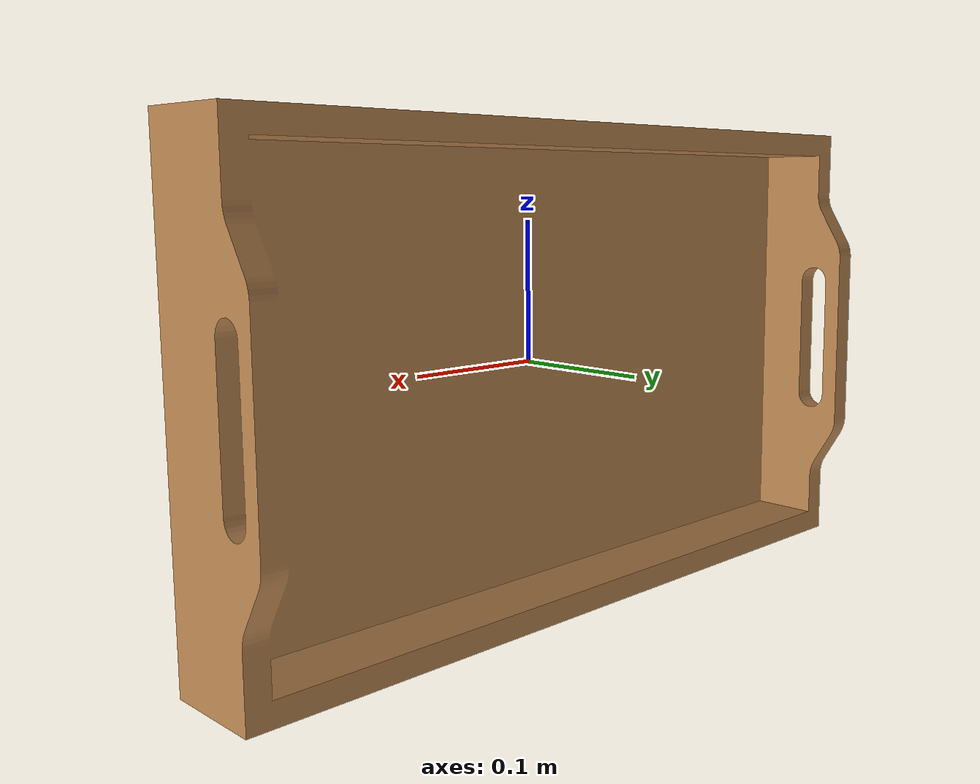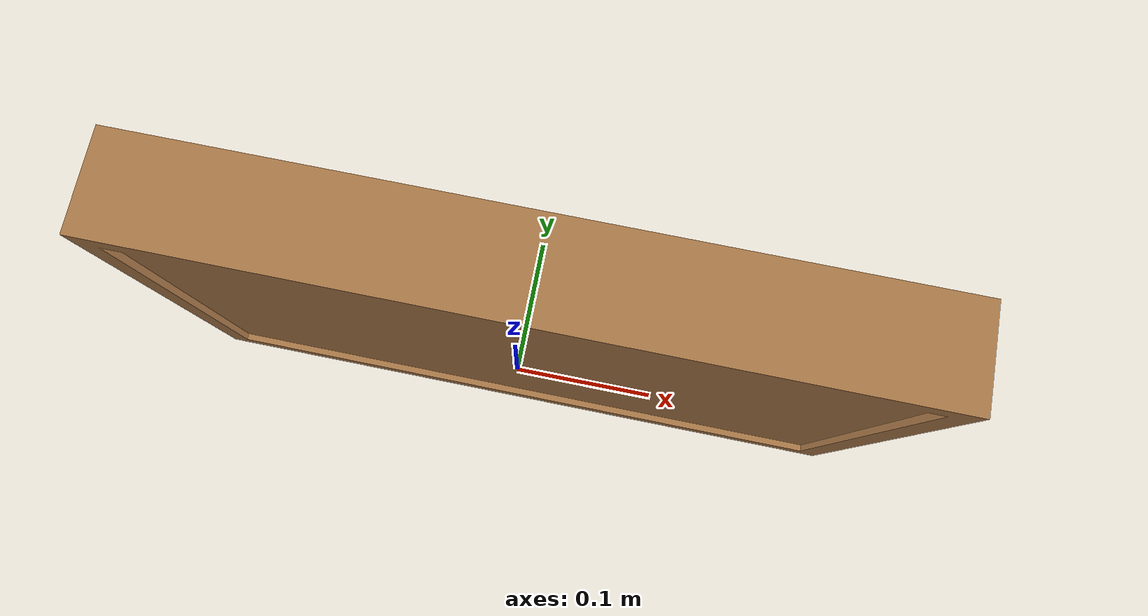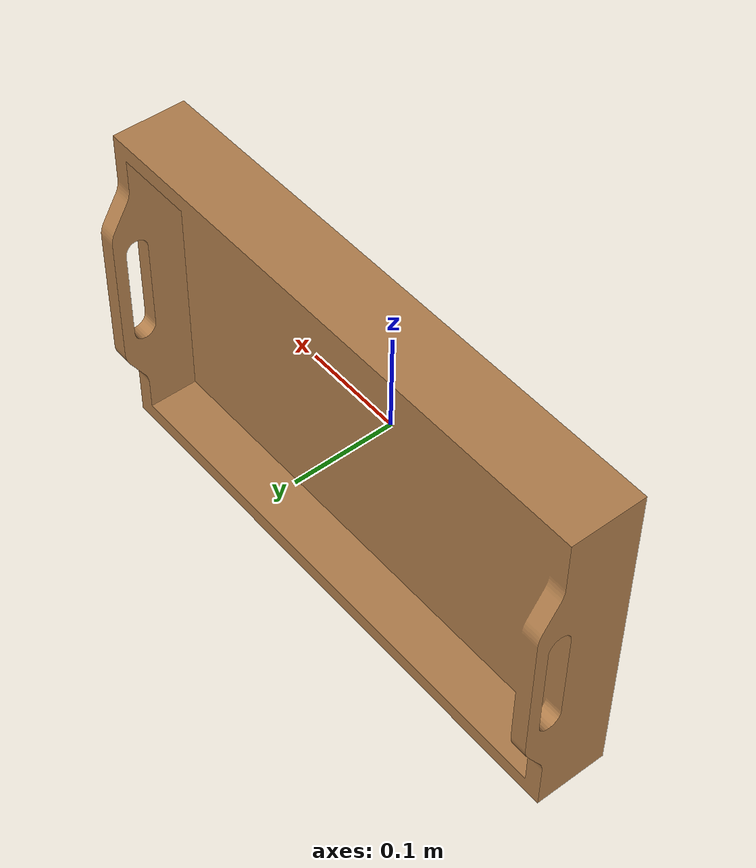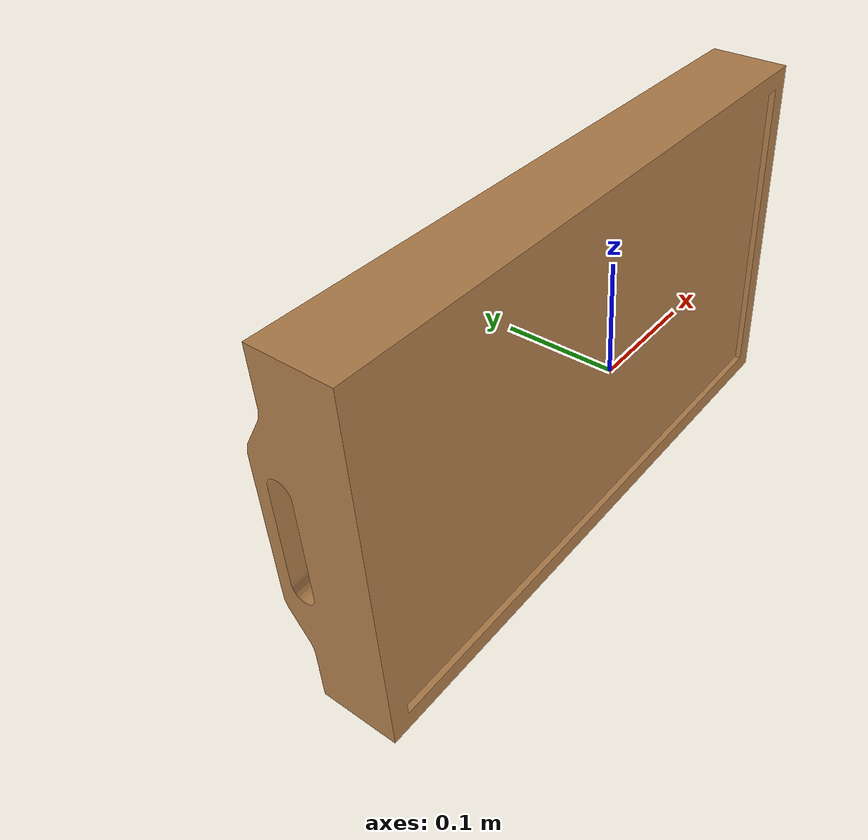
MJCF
<?xml version="1.0" encoding="utf-8"?>
<mujoco model="wood_tray">
  <compiler angle="radian" meshdir="assets" texturedir="assets" autolimits="true"/>
  <default>
    <default class="visual">
      <geom group="2" type="mesh" contype="0" conaffinity="0"/>
    </default>
    <default class="collision">
      <geom group="3" type="mesh" solimp="0.95 0.99 0.001" solref="0.004 1" friction="0.8.0 0.005 0.0001" density="500" mass="0.75"/>
    </default>
  </default>
  <asset>
    <texture type="2d" name="wood_tray_diffuse" file="wood_tray_diffuse.png"/>
    <material name="bake_to" texture="wood_tray_diffuse" specular="0.894545" shininess="0.0761653"/>
    <mesh file="wood_tray.obj" scale="1.1 1.1 1.1"/>
    <mesh file="wood_tray_collision_0.obj" scale="1.1 1.1 1.1"/>
    <mesh file="wood_tray_collision_1.obj" scale="1.1 1.1 1.1"/>
    <mesh file="wood_tray_collision_2.obj" scale="1.1 1.1 1.1"/>
    <mesh file="wood_tray_collision_3.obj" scale="1.1 1.1 1.1"/>
    <mesh file="wood_tray_collision_4.obj" scale="1.1 1.1 1.1"/>
    <mesh file="wood_tray_collision_5.obj" scale="2.5 1.1 1.3"/>
    <mesh file="wood_tray_collision_6.obj" scale="1.1 1.1 1.1"/>
    <mesh file="wood_tray_collision_7.obj" scale="1.1 1.1 1.1"/>
    <mesh file="wood_tray_collision_8.obj" scale="1.1 1.1 1.1"/>
    <mesh file="wood_tray_collision_9.obj" scale="1.1 1.1 1.1"/>
    <mesh file="wood_tray_collision_10.obj" scale="1.1 1.1 1.1"/>
    <mesh file="wood_tray_collision_11.obj" scale="1.1 1.1 1.1"/>

  </asset>
  <worldbody>
    <body name="wood_tray">
      <geom material="bake_to" mesh="wood_tray" class="visual" />
      <geom mesh="wood_tray_collision_0" rgba="0.4521902627063089 0.9945228180760667 0.5537872224910386 1" class="collision" />
      <geom mesh="wood_tray_collision_1" rgba="0.5091132062360405 0.4293745058976225 0.29461236475039465 1" class="collision" />
      <geom mesh="wood_tray_collision_2" rgba="0.4700722154009228 0.6256771382581452 0.8602099456158954 1" class="collision"/>
      <geom mesh="wood_tray_collision_3" rgba="0.3111468831905849 0.43179954256935793 0.34683936789405134 1" class="collision"/>

      <geom mesh="wood_tray_collision_5" pos="-0.26 0 0" rgba="0.34770248640162815 0.7155382350271197 0.1269678726199005 1" class="collision" solimp="0.95 0.99 0.001" solref="0.004 1" friction="1.0 0.005 0.0001" />

      <geom mesh="wood_tray_collision_7" rgba="0.8992569372352012 0.6981681016311446 0.6965598398691744 1" class="collision" friction="1.0 0.005 0.0001"/>

      <geom mesh="wood_tray_collision_9" rgba="0.13688384649262042 0.8249984849383837 0.10874298160292162 1" class="collision"/>
      <geom mesh="wood_tray_collision_11" rgba="0.5746543320994515 0.2793695083737242 0.6145334552750714 1" class="collision"/>

    </body>
  </worldbody>
</mujoco>
